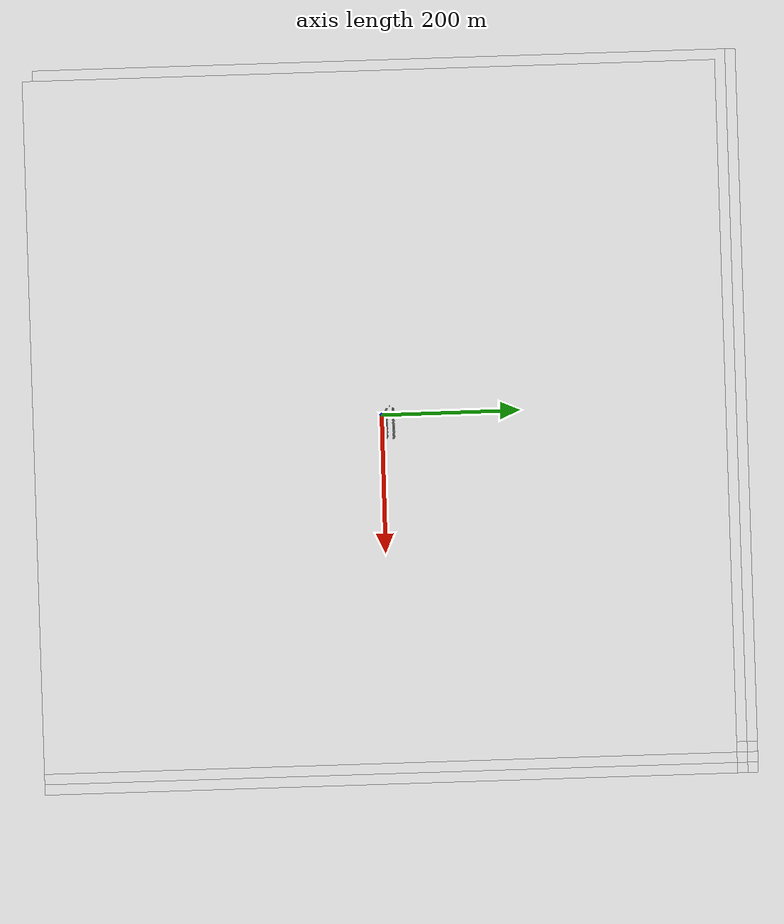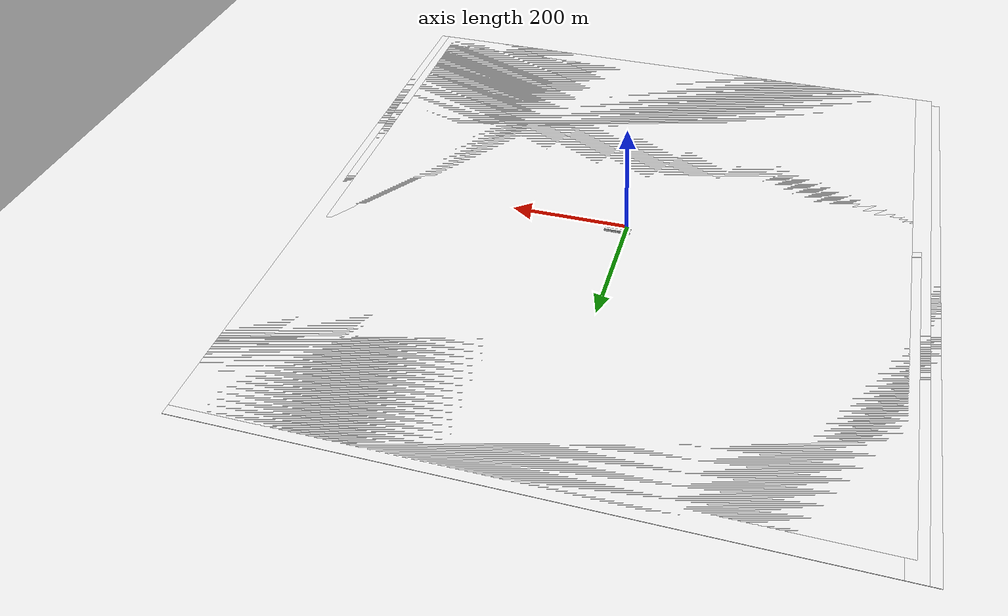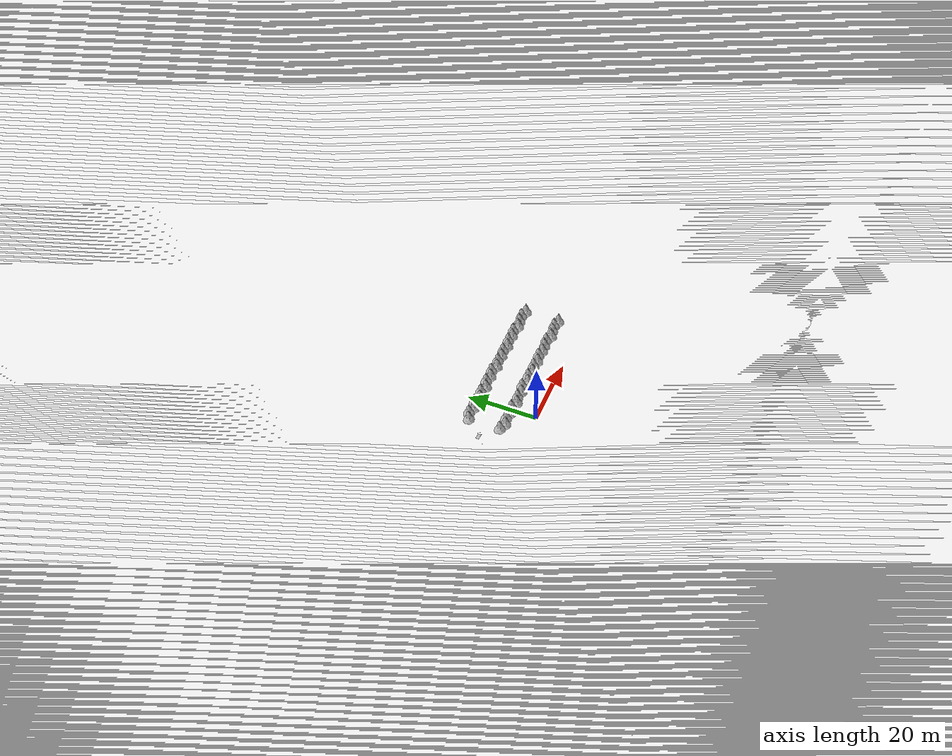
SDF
<sdf version='1.9'>
  <world name='hexarotor_forest_orchard_world'>
    <physics name='4ms' type='ignored'>
      <max_step_size>0.0040000000000000001</max_step_size>
      <real_time_factor>1</real_time_factor>
      <real_time_update_rate>1000</real_time_update_rate>
    </physics>

    <plugin name='ignition::gazebo::systems::Physics' filename='ignition-gazebo-physics-system'/>
    <plugin name='ignition::gazebo::systems::Sensors' filename='ignition-gazebo-sensors-system'>
      <render_engine>ogre2</render_engine>
    </plugin>
    <plugin name='ignition::gazebo::systems::SceneBroadcaster' filename='ignition-gazebo-scene-broadcaster-system'/>
    <plugin name='ignition::gazebo::systems::UserCommands' filename='ignition-gazebo-user-commands-system'/>

    <spherical_coordinates>
      <surface_model>EARTH_WGS84</surface_model>
      <world_frame_orientation>ENU</world_frame_orientation>
      <latitude_deg>38.775593600000001</latitude_deg>
      <longitude_deg>-9.1375554000000001</longitude_deg>
      <elevation>0</elevation>
      <heading_deg>0</heading_deg>
    </spherical_coordinates>

    <gravity>0 0 -9.8</gravity>
    <magnetic_field>6e-06 2.3e-05 -4.2e-05</magnetic_field>
    <atmosphere type='adiabatic'/>

    <!-- Scene: Brighter, no shadows -->
    <scene>
      <ambient>0.6 0.6 0.6 1</ambient>
      <background>0.7 0.7 0.8 1</background>
      <shadows>false</shadows>
    </scene>

    <!-- Sun: Brighter, no shadows -->
    <light name='sun' type='directional'>
      <pose>0 0 10 0 -0 0</pose>
      <cast_shadows>false</cast_shadows>
      <intensity>1.2</intensity>
      <direction>-0.5 0.1 -0.9</direction>
      <diffuse>0.9 0.9 0.9 1</diffuse>
      <specular>0.3 0.3 0.3 1</specular>
      <attenuation>
        <range>1000</range>
        <linear>0.01</linear>
        <constant>0.90000000000000002</constant>
        <quadratic>0.001</quadratic>
      </attenuation>
    </light>

    <!-- Robot: bb_robot (tracked/skid-steer) -->
    <include>
      <uri>model://bb_robot</uri>
      <name>bb_robot</name>
      <pose>-12 12 0.5 0 0 0</pose>
    </include>

    <!-- Ground: grass patch tiles (15m x 15m each) -->
    <include><uri>model://grasspatch</uri><name>grass_00</name><pose>-12.0 -3.0 0 0 0 0</pose></include>
    <include><uri>model://grasspatch</uri><name>grass_10</name><pose>  3.0 -3.0 0 0 0 0</pose></include>
    <include><uri>model://grasspatch</uri><name>grass_20</name><pose> 18.0 -3.0 0 0 0 0</pose></include>
    <include><uri>model://grasspatch</uri><name>grass_30</name><pose> 33.0 -3.0 0 0 0 0</pose></include>

    <include><uri>model://grasspatch</uri><name>grass_01</name><pose>-12.0 12.0 0 0 0 0</pose></include>
    <include><uri>model://grasspatch</uri><name>grass_11</name><pose>  3.0 12.0 0 0 0 0</pose></include>
    <include><uri>model://grasspatch</uri><name>grass_21</name><pose> 18.0 12.0 0 0 0 0</pose></include>
    <include><uri>model://grasspatch</uri><name>grass_31</name><pose> 33.0 12.0 0 0 0 0</pose></include>

    <include><uri>model://grasspatch</uri><name>grass_02</name><pose>-12.0 27.0 0 0 0 0</pose></include>
    <include><uri>model://grasspatch</uri><name>grass_12</name><pose>  3.0 27.0 0 0 0 0</pose></include>
    <include><uri>model://grasspatch</uri><name>grass_22</name><pose> 18.0 27.0 0 0 0 0</pose></include>
    <include><uri>model://grasspatch</uri><name>grass_32</name><pose> 33.0 27.0 0 0 0 0</pose></include>

    <!-- Trees: Irregular orchard grid (random offsets ~0.5m) -->
    <!-- Row 0 (nominal y = 7) -->
    <include><uri>model://pine_tree</uri><name>tree_r0_c00</name><pose>-8  7.4 0 0 0 0</pose></include>
    <include><uri>model://pine_tree</uri><name>tree_r0_c01</name><pose>-6  6.6 0 0 0 0</pose></include>
    <include><uri>model://pine_tree</uri><name>tree_r0_c02</name><pose>-4  7.2 0 0 0 0</pose></include>
    <include><uri>model://pine_tree</uri><name>tree_r0_c03</name><pose>-2  6.7 0 0 0 0</pose></include>
    <include><uri>model://pine_tree</uri><name>tree_r0_c04</name><pose>0   7.3 0 0 0 0</pose></include>
    <include><uri>model://pine_tree</uri><name>tree_r0_c05</name><pose>2   6.5 0 0 0 0</pose></include>
    <include><uri>model://pine_tree</uri><name>tree_r0_c06</name><pose>4   7.1 0 0 0 0</pose></include>
    <include><uri>model://pine_tree</uri><name>tree_r0_c07</name><pose>6   6.8 0 0 0 0</pose></include>
    <include><uri>model://pine_tree</uri><name>tree_r0_c08</name><pose>8   7.4 0 0 0 0</pose></include>
    <include><uri>model://pine_tree</uri><name>tree_r0_c09</name><pose>10  6.5 0 0 0 0</pose></include>
    <include><uri>model://pine_tree</uri><name>tree_r0_c10</name><pose>12  7.2 0 0 0 0</pose></include>
    <include><uri>model://pine_tree</uri><name>tree_r0_c11</name><pose>14  6.7 0 0 0 0</pose></include>

    <!-- Row 0 Extension (10 trees) -->
    <include><uri>model://pine_tree</uri><name>tree_r0_c12</name><pose>16  7.2 0 0 0 0</pose></include>
    <include><uri>model://pine_tree</uri><name>tree_r0_c13</name><pose>18  6.8 0 0 0 0</pose></include>
    <include><uri>model://pine_tree</uri><name>tree_r0_c14</name><pose>20  7.3 0 0 0 0</pose></include>
    <include><uri>model://pine_tree</uri><name>tree_r0_c15</name><pose>22  6.9 0 0 0 0</pose></include>
    <include><uri>model://pine_tree</uri><name>tree_r0_c16</name><pose>24  7.1 0 0 0 0</pose></include>
    <include><uri>model://pine_tree</uri><name>tree_r0_c17</name><pose>26  7.4 0 0 0 0</pose></include>
    <include><uri>model://pine_tree</uri><name>tree_r0_c18</name><pose>28  6.6 0 0 0 0</pose></include>
    <include><uri>model://pine_tree</uri><name>tree_r0_c19</name><pose>30  7.0 0 0 0 0</pose></include>
    <include><uri>model://pine_tree</uri><name>tree_r0_c20</name><pose>32  7.3 0 0 0 0</pose></include>
    <include><uri>model://pine_tree</uri><name>tree_r0_c21</name><pose>34  6.7 0 0 0 0</pose></include>

    <!-- Row 1 (nominal y = 17) -->
    <include><uri>model://pine_tree</uri><name>tree_r1_c00</name><pose>-8  16.5 0 0 0 0</pose></include>
    <include><uri>model://pine_tree</uri><name>tree_r1_c01</name><pose>-6  17.3 0 0 0 0</pose></include>
    <include><uri>model://pine_tree</uri><name>tree_r1_c02</name><pose>-4  16.7 0 0 0 0</pose></include>
    <include><uri>model://pine_tree</uri><name>tree_r1_c03</name><pose>-2  17.4 0 0 0 0</pose></include>
    <include><uri>model://pine_tree</uri><name>tree_r1_c04</name><pose>0   16.6 0 0 0 0</pose></include>
    <include><uri>model://pine_tree</uri><name>tree_r1_c05</name><pose>2   17.2 0 0 0 0</pose></include>
    <include><uri>model://pine_tree</uri><name>tree_r1_c06</name><pose>4   16.5 0 0 0 0</pose></include>
    <include><uri>model://pine_tree</uri><name>tree_r1_c07</name><pose>6   17.3 0 0 0 0</pose></include>
    <include><uri>model://pine_tree</uri><name>tree_r1_c08</name><pose>8   16.8 0 0 0 0</pose></include>
    <include><uri>model://pine_tree</uri><name>tree_r1_c09</name><pose>10  17.4 0 0 0 0</pose></include>
    <include><uri>model://pine_tree</uri><name>tree_r1_c10</name><pose>12  16.6 0 0 0 0</pose></include>
    <include><uri>model://pine_tree</uri><name>tree_r1_c11</name><pose>14  17.1 0 0 0 0</pose></include>

    <!-- Row 1 Extension (10 trees) -->
    <include><uri>model://pine_tree</uri><name>tree_r1_c12</name><pose>16  16.8 0 0 0 0</pose></include>
    <include><uri>model://pine_tree</uri><name>tree_r1_c13</name><pose>18  17.2 0 0 0 0</pose></include>
    <include><uri>model://pine_tree</uri><name>tree_r1_c14</name><pose>20  16.7 0 0 0 0</pose></include>
    <include><uri>model://pine_tree</uri><name>tree_r1_c15</name><pose>22  17.3 0 0 0 0</pose></include>
    <include><uri>model://pine_tree</uri><name>tree_r1_c16</name><pose>24  16.9 0 0 0 0</pose></include>
    <include><uri>model://pine_tree</uri><name>tree_r1_c17</name><pose>26  17.4 0 0 0 0</pose></include>
    <include><uri>model://pine_tree</uri><name>tree_r1_c18</name><pose>28  16.6 0 0 0 0</pose></include>
    <include><uri>model://pine_tree</uri><name>tree_r1_c19</name><pose>30  17.0 0 0 0 0</pose></include>
    <include><uri>model://pine_tree</uri><name>tree_r1_c20</name><pose>32  17.3 0 0 0 0</pose></include>
    <include><uri>model://pine_tree</uri><name>tree_r1_c21</name><pose>34  16.7 0 0 0 0</pose></include>
  </world>
</sdf>

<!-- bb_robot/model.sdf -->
<sdf version='1.9'>
  <model name='bb_robot'>
    <!-- Base link: body mesh -->
    <link name='body'>
      <inertial>
        <mass>300.0</mass>
        <inertia>
          <ixx>313.8</ixx>
          <ixy>0</ixy>
          <ixz>0</ixz>
          <iyy>217.0</iyy>
          <iyz>0</iyz>
          <izz>447.8</izz>
        </inertia>
      </inertial>
      <visual name='body_visual'>
        <geometry>
          <mesh>
            <scale>1 1 1</scale>
            <uri>meshes/body.STL</uri>
          </mesh>
        </geometry>
        <material>
          <diffuse>0.75 0.75 0.75 1</diffuse>
          <ambient>0.75 0.75 0.75 1</ambient>
        </material>
      </visual>
      <collision name='body_collision'>
        <!-- Keep body collision high to avoid scraping ground -->
        <pose>0 0 0.3 0 0 0</pose>
        <geometry>
          <box>
            <size>2.5 1.4 0.4</size>
          </box>
        </geometry>
      </collision>
    </link>

    <!-- Camera body (visual only) -->
    <link name='camera_body'>
      <pose relative_to='body'>1.1775 0.00027 0.383 0 0 0</pose>
      <visual name='camera_body_visual'>
        <geometry>
          <mesh>
            <scale>1 1 1</scale>
            <uri>meshes/camera_body.STL</uri>
          </mesh>
        </geometry>
      </visual>
    </link>
    <joint name='camera_joint' type='fixed'>
      <parent>body</parent>
      <child>camera_body</child>
    </joint>

    <link name="camera_optical_frame">
      <pose relative_to="camera_body">0 0 0 0 0 0</pose>
      <inertial>
        <mass>0.01</mass>
        <inertia>
          <ixx>0.0001</ixx><ixy>0</ixy><ixz>0</ixz>
          <iyy>0.0001</iyy><iyz>0</iyz><izz>0.0001</izz>
        </inertia>
      </inertial>
      <sensor name="camera" type="camera">
        <pose>0 0 0 0 0 0</pose>
        <always_on>1</always_on>
        <update_rate>30</update_rate>
        <visualize>true</visualize>
        <topic>/camera/image_raw</topic>
        <camera>
          <horizontal_fov>1.047</horizontal_fov>
          <image>
            <width>640</width>
            <height>480</height>
            <format>R8G8B8</format>
          </image>
          <clip>
            <near>0.1</near>
            <far>100</far>
          </clip>
        </camera>
      </sensor>

      <!-- Depth camera removed: current row-offset mode uses pseudo-distance from image centerpoints (no depth required). -->
    </link>
    <joint name="camera_optical_joint" type="fixed">
      <parent>camera_body</parent>
      <child>camera_optical_frame</child>
    </joint>

    <!-- Left Wheel/Sprocket (Simulated as a wheel for reliable movement) -->
    <link name='left_track'>
      <pose relative_to='body'>0.942 0.61468 0.023 0 0 0</pose>
      <inertial>
        <mass>5.0</mass>
        <inertia>
          <ixx>0.1</ixx>
          <ixy>0</ixy>
          <ixz>0</ixz>
          <iyy>0.1</iyy>
          <iyz>0</iyz>
          <izz>0.1</izz>
        </inertia>
      </inertial>
      <visual name='left_track_visual'>
        <geometry>
          <mesh>
            <scale>1 1 1</scale>
            <uri>meshes/wheel2_body.STL</uri>
          </mesh>
        </geometry>
        <material>
          <diffuse>0.2 0.2 0.2 1</diffuse>
          <ambient>0.2 0.2 0.2 1</ambient>
        </material>
      </visual>
      <collision name='left_track_collision'>
        <!-- Use a cylinder or sphere for smooth rolling -->
        <pose>0 0 0 1.5708 0 0</pose>
        <geometry>
          <cylinder>
            <radius>0.2</radius>
            <length>0.2</length>
          </cylinder>
        </geometry>
        <surface>
          <friction>
            <ode>
              <mu>1.0</mu>
              <mu2>1.0</mu2>
            </ode>
          </friction>
        </surface>
      </collision>
    </link>
    <!-- Revolute joint for DiffDrive -->
    <joint name='left_motor_joint' type='revolute'>
      <parent>body</parent>
      <child>left_track</child>
      <axis>
        <xyz>0 1 0</xyz>
        <limit>
          <!-- No limits for continuous rotation -->
          <lower>-1.0e16</lower>
          <upper>1.0e16</upper>
        </limit>
      </axis>
    </joint>

    <!-- Right Wheel/Sprocket -->
    <link name='right_track'>
      <pose relative_to='body'>0.942 -0.61448 0.023 0 0 0</pose>
      <inertial>
        <mass>5.0</mass>
        <inertia>
          <ixx>0.1</ixx>
          <ixy>0</ixy>
          <ixz>0</ixz>
          <iyy>0.1</iyy>
          <iyz>0</iyz>
          <izz>0.1</izz>
        </inertia>
      </inertial>
      <visual name='right_track_visual'>
        <geometry>
          <mesh>
            <scale>1 1 1</scale>
            <uri>meshes/wheel1_body.STL</uri>
          </mesh>
        </geometry>
        <material>
          <diffuse>0.2 0.2 0.2 1</diffuse>
          <ambient>0.2 0.2 0.2 1</ambient>
        </material>
      </visual>
      <collision name='right_track_collision'>
        <pose>0 0 0 1.5708 0 0</pose>
        <geometry>
          <cylinder>
            <radius>0.2</radius>
            <length>0.2</length>
          </cylinder>
        </geometry>
        <surface>
          <friction>
            <ode>
              <mu>1.0</mu>
              <mu2>1.0</mu2>
            </ode>
          </friction>
        </surface>
      </collision>
    </link>
    <joint name='right_motor_joint' type='revolute'>
      <parent>body</parent>
      <child>right_track</child>
      <axis>
        <xyz>0 1 0</xyz>
        <limit>
          <lower>-1.0e16</lower>
          <upper>1.0e16</upper>
        </limit>
      </axis>
    </joint>

    <!-- [FIX] 添加后部支撑万向轮 (Caster Wheel) 防止后沉 -->
    <link name='caster_wheel'>
      <pose relative_to='body'>-1.0 0 -0.15 0 0 0</pose>
      <inertial>
        <mass>1.0</mass>
        <inertia>
          <ixx>0.01</ixx>
          <ixy>0</ixy>
          <ixz>0</ixz>
          <iyy>0.01</iyy>
          <iyz>0</iyz>
          <izz>0.01</izz>
        </inertia>
      </inertial>
      <collision name='caster_collision'>
        <geometry>
          <sphere>
            <radius>0.15</radius>
          </sphere>
        </geometry>
        <surface>
          <friction>
            <ode>
              <mu>0.0</mu> <!-- 无摩擦，方便转向 -->
              <mu2>0.0</mu2>
            </ode>
          </friction>
        </surface>
      </collision>
      <visual name='caster_visual'>
        <geometry>
          <sphere>
            <radius>0.15</radius>
          </sphere>
        </geometry>
        <material>
          <diffuse>0 0 0 1</diffuse> <!-- 黑色 -->
        </material>
      </visual>
    </link>
    <joint name='caster_joint' type='fixed'>
      <parent>body</parent>
      <child>caster_wheel</child>
    </joint>

    <!-- DiffDrive Plugin: Robust, proven movement -->
    <plugin
      filename="ignition-gazebo-diff-drive-system"
      name="ignition::gazebo::systems::DiffDrive">
      <left_joint>left_motor_joint</left_joint>
      <right_joint>right_motor_joint</right_joint>
      <wheel_separation>1.229</wheel_separation>
      <wheel_radius>0.2</wheel_radius>
      <odom_publish_frequency>20</odom_publish_frequency>
      <topic>/model/bb_robot/cmd_vel</topic>
      <odom_topic>/model/bb_robot/odometry</odom_topic>
      <tf_topic>/model/bb_robot/tf</tf_topic>
      <frame_id>bb_robot/odom</frame_id>
      <child_frame_id>bb_robot/base_link</child_frame_id>
    </plugin>
  </model>
</sdf>

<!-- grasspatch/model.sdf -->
<sdf version='1.4'>
  <model name='grasspatch'>
    <static>true</static>
    <link name='link'>
      <collision name='collision'>
        <pose>0 0 0 0 0 0</pose>
        <geometry>
          <plane>
            <normal>0 0 1</normal>
            <size>1000 1000</size>
          </plane>
        </geometry>
        <surface>
          <friction>
            <ode>
              <mu>0.5</mu>
              <mu2>.5</mu2>
            </ode>
          </friction>
        </surface>
      </collision>

      <visual name='visual_s10'>
        <pose>0 0 0 0 0 0</pose>
        <cast_shadows>false</cast_shadows>
        <geometry>
          <plane>
            <normal>0 0 1</normal>
            <size>1000 1000</size>
          </plane>
        </geometry>
          <material>
         <diffuse>1.0 1.0 1.0</diffuse>
          <specular>1.0 1.0 1.0</specular>
		  <pbr>
			<metal>
			   <albedo_map>materials/textures/grass_dry.png</albedo_map>
			   <normal_map>materials/textures/grass_dry.png</normal_map>
			</metal>
		  </pbr>
		</material>
      </visual>

    </link>
  </model>
</sdf>

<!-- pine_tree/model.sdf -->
<sdf version="1.6">
  <model name="pine_tree">
    <static>true</static>
    <link name="link">
      <collision name="collision">
        <geometry>
          <mesh>
            <uri>file://isr-testbed/pine_tree/meshes/pine_tree.dae</uri>
          </mesh>
        </geometry>
      </collision>
      <visual name="branch">
        <geometry>
          <mesh>
            <uri>file://isr-testbed/pine_tree/meshes/pine_tree.dae</uri>
            <submesh>
              <name>Branch</name>
            </submesh>
          </mesh>
        </geometry>
        <material>
          <script>
            <uri>file://isr-testbed/pine_tree/materials/scripts/</uri>
            <uri>file://isr-testbed/pine_tree/materials/textures/</uri>
            <name>PineTree/Branch</name>
          </script>
        </material>
      </visual>
      <visual name="bark">
        <geometry>
          <mesh>
            <uri>file://isr-testbed/pine_tree/meshes/pine_tree.dae</uri>
            <submesh>
              <name>Bark</name>
            </submesh>
          </mesh>
        </geometry>
        <material>
          <script>
            <uri>file://isr-testbed/pine_tree/materials/scripts/</uri>
            <uri>file://isr-testbed/pine_tree/materials/textures/</uri>
            <name>PineTree/Bark</name>
          </script>
        </material>
      </visual>
    </link>
  </model>
</sdf>
